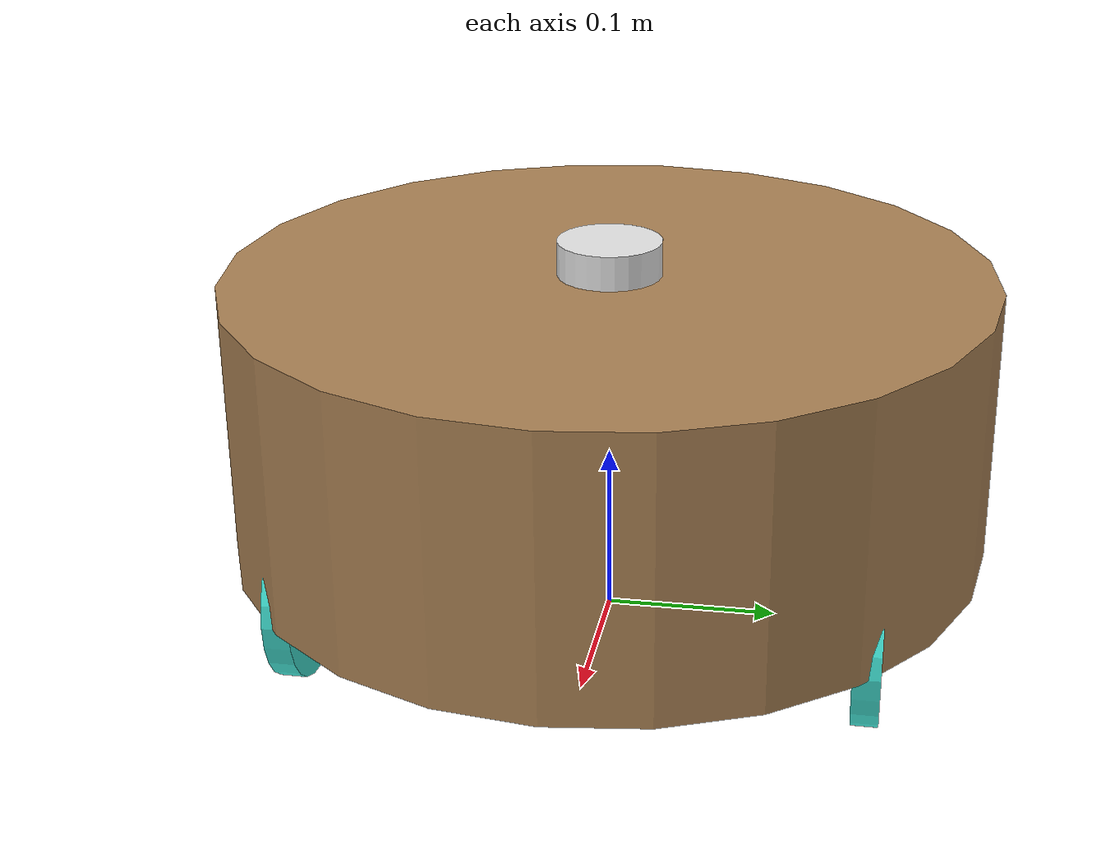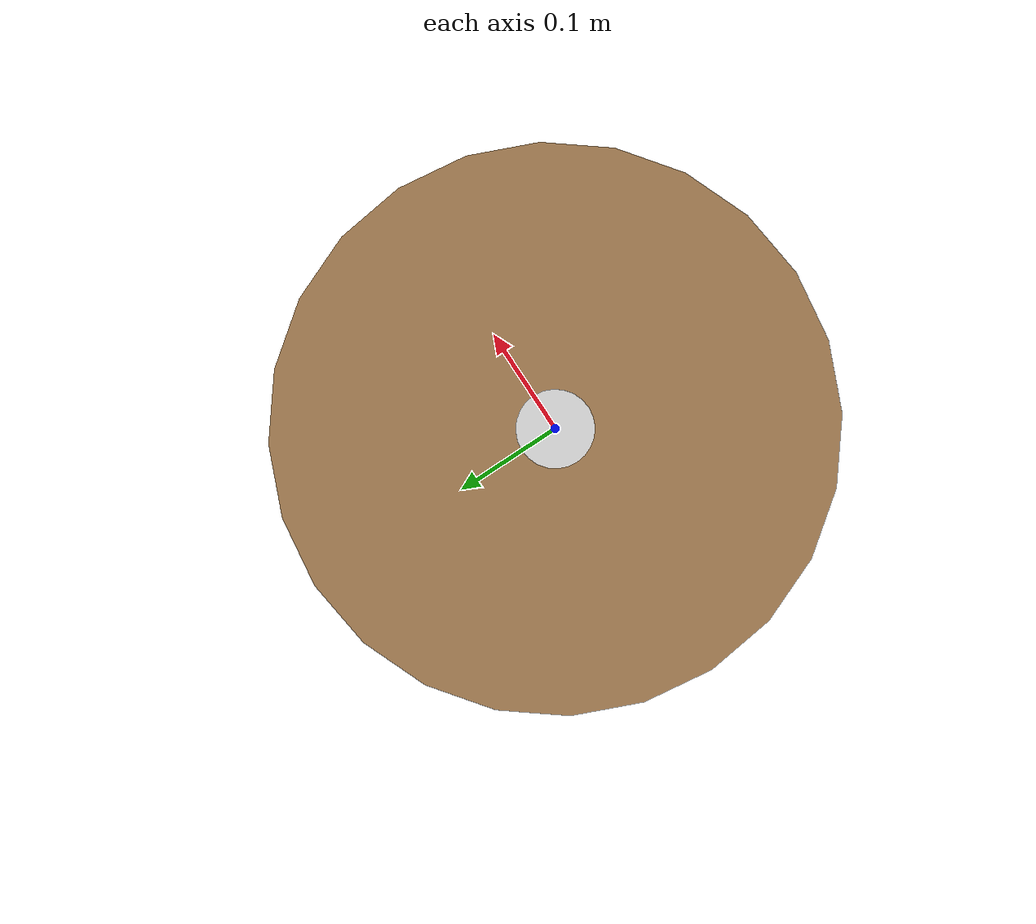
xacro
<?xml version="1.0"?>
<robot xmlns:xacro="http://www.ros.org/wiki/xacro" name="arips">

  <!-- Properties -->
  <xacro:property name="body_radius" value="0.22"/>
  <xacro:property name="body_height" value="0.16"/>
  <xacro:property name="wheel_radius" value="0.0504"/>
  <xacro:property name="wheel_width" value="0.015"/>
  <xacro:property name="body_center_z" value="${wheel_radius + body_height/2}"/>
  <xacro:property name="wheel_base" value="0.317"/>
  <xacro:property name="wheel_offset_x" value="0.1"/>
  <xacro:property name="wheel_offset_y" value="${wheel_base / 2}"/>
  <xacro:property name="wheel_offset_z" value="${wheel_radius}"/>
  <xacro:property name="caster_radius" value="0.04"/>
  <xacro:property name="caster_offset_x" value="-0.15"/>
  <xacro:property name="caster_offset_z" value="${caster_radius}"/>
  <xacro:property name="laser_height" value="${body_center_z + body_height/2 + 0.01}"/>

  <!-- Materials -->
  <material name="torquoise">
    <color rgba="0.25 0.875 0.8175 1.0"/>
  </material>
  <material name="wood">
    <color rgba="0.67 0.51 0.33 1.0"/>
  </material>
  <material name="white">
    <color rgba="0.9 0.9 0.9 1.0"/>
  </material>

  <!-- Single-link model: body + wheels + caster + lidar all in base_link -->
  <link name="base_link">
    <!-- Main body -->
    <visual>
      <origin xyz="0 0 ${body_center_z}" rpy="0 0 0"/>
      <geometry>
        <cylinder radius="${body_radius}" length="${body_height}"/>
      </geometry>
      <material name="wood"/>
    </visual>
    <collision>
      <origin xyz="0 0 ${body_center_z}" rpy="0 0 0"/>
      <geometry>
        <cylinder radius="${body_radius}" length="${body_height}"/>
      </geometry>
    </collision>

    <!-- Left wheel -->
    <visual>
      <origin xyz="${wheel_offset_x} ${wheel_offset_y} ${wheel_offset_z}" rpy="${-pi/2} 0 0"/>
      <geometry>
        <cylinder radius="${wheel_radius}" length="${wheel_width}"/>
      </geometry>
      <material name="torquoise"/>
    </visual>
    <collision>
      <origin xyz="${wheel_offset_x} ${wheel_offset_y} ${wheel_offset_z}" rpy="${-pi/2} 0 0"/>
      <geometry>
        <cylinder radius="${wheel_radius}" length="${wheel_width}"/>
      </geometry>
    </collision>

    <!-- Right wheel -->
    <visual>
      <origin xyz="${wheel_offset_x} ${-wheel_offset_y} ${wheel_offset_z}" rpy="${-pi/2} 0 0"/>
      <geometry>
        <cylinder radius="${wheel_radius}" length="${wheel_width}"/>
      </geometry>
      <material name="torquoise"/>
    </visual>
    <collision>
      <origin xyz="${wheel_offset_x} ${-wheel_offset_y} ${wheel_offset_z}" rpy="${-pi/2} 0 0"/>
      <geometry>
        <cylinder radius="${wheel_radius}" length="${wheel_width}"/>
      </geometry>
    </collision>

    <!-- Rear caster -->
    <visual>
      <origin xyz="${caster_offset_x} 0 ${caster_offset_z}" rpy="0 0 0"/>
      <geometry>
        <sphere radius="${caster_radius}"/>
      </geometry>
      <material name="white"/>
    </visual>
    <collision>
      <origin xyz="${caster_offset_x} 0 ${caster_offset_z}" rpy="0 0 0"/>
      <geometry>
        <sphere radius="${caster_radius}"/>
      </geometry>
    </collision>

    <!-- Lidar puck -->
    <visual>
      <origin xyz="0 0 ${laser_height}" rpy="0 0 0"/>
      <geometry>
        <cylinder radius="0.03" length="0.02"/>
      </geometry>
      <material name="white"/>
    </visual>

    <inertial>
      <origin xyz="0 0 ${body_center_z}" rpy="0 0 0"/>
      <mass value="3.0"/>
      <inertia ixx="0.02" ixy="0" ixz="0" iyy="0.02" iyz="0" izz="0.03"/>
    </inertial>
  </link>

</robot>
